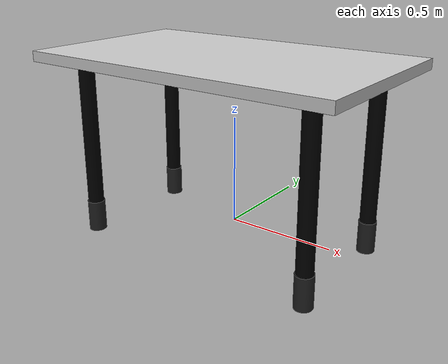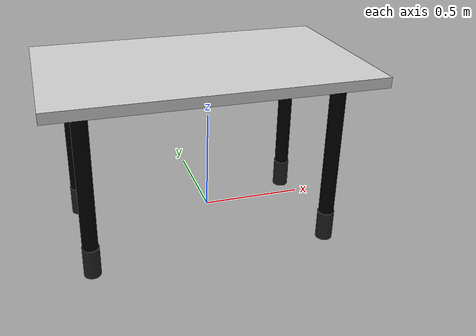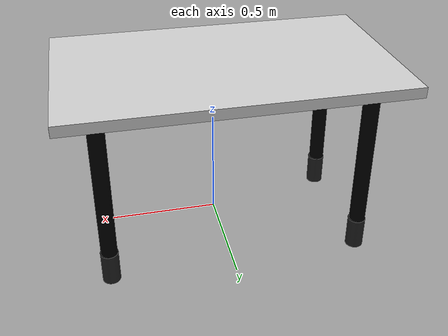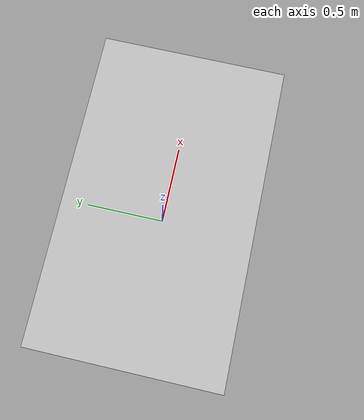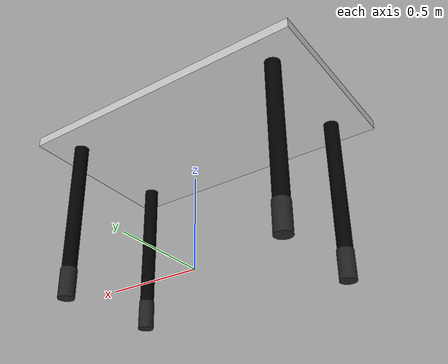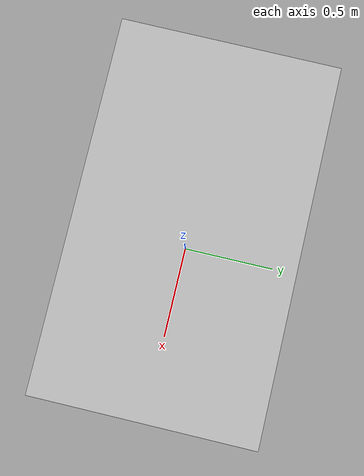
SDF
<?xml version='1.0'?>
<sdf version='1.6'>
  <model name='office_table'>
    <link name='link'>
      <pose frame=''>0 0 0 0 0 0</pose>
       <visual name='visual'>
        <pose frame=''>0 0 0 0 0 0</pose>
        <geometry>
          <mesh>
            <uri>model://office_table/meshes/office_table.dae</uri>
            <scale>1 1 1</scale>
          </mesh>
        </geometry>
        <cast_shadows>1</cast_shadows>
        <transparency>0</transparency>
      </visual>
      <collision name='collision'>
        <laser_retro>0</laser_retro>
        <max_contacts>10</max_contacts>
        <pose frame=''>0 0 0 0 -0 0</pose>
        <geometry>
          <mesh>
            <uri>model://office_table/meshes/office_table.dae</uri>
            <scale>1 1 1</scale>
          </mesh>
        </geometry>
        </collision>
    </link>
    <static>1</static>
    <allow_auto_disable>1</allow_auto_disable>
  </model>
</sdf>
